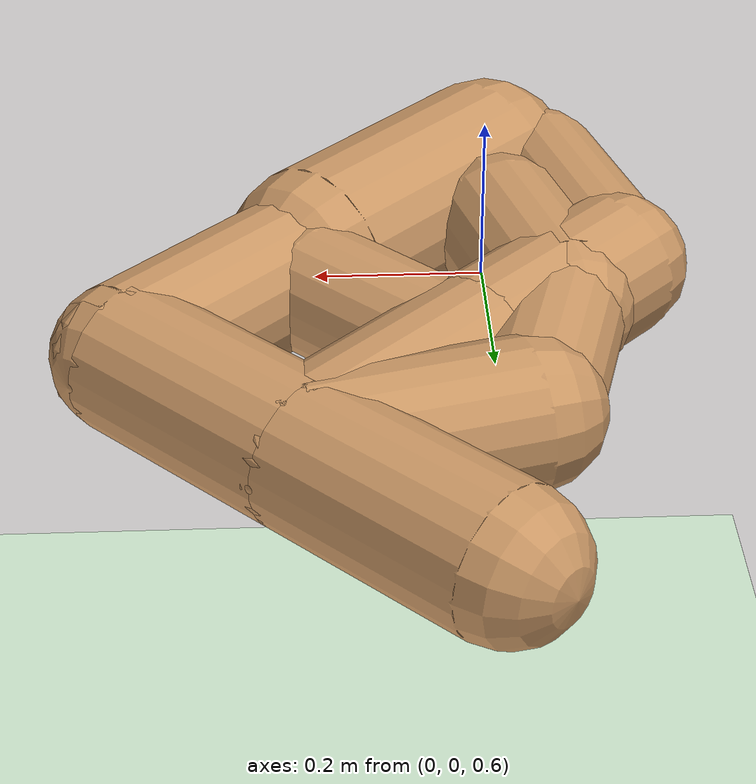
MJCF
<!--similar to Walker2D env-->
<mujoco model="walker">
  <compiler angle="degree" coordinate="local" inertiafromgeom="true"/>
  <option integrator="RK4" timestep="0.01"/>
  <custom>
    <numeric data="0.0 0.0 0.55 1.0 0.0 0.0 0.0 0.0 1.0 0.0 -1.0 0.0 -1.0 0.0 1.0" name="init_qpos"/>
  </custom>
  <default>
    <joint armature="0.01" damping=".1" limited="true"/>
    <geom conaffinity="0" condim="3" contype="1" density="1000" friction=".7 .1 .1" rgba="0.8 0.6 .4 1"/>
  </default>
  <asset>
    <texture builtin="gradient" height="100" rgb1="1 1 1" rgb2="0 0 0" type="skybox" width="100"/>
    <texture builtin="flat" height="1278" mark="cross" markrgb="1 1 1" name="texgeom" random="0.01" rgb1="0.8 0.6 0.4" rgb2="0.8 0.6 0.4" type="cube" width="127"/>
    <texture builtin="checker" height="100" name="texplane" rgb1="0 0 0" rgb2="0.8 0.8 0.8" type="2d" width="100"/>
    <material name="MatPlane" reflectance="0.5" shininess="1" specular="1" texrepeat="60 60" texture="texplane"/>
    <material name="geom" texture="texgeom" texuniform="true"/>
  </asset>
  <worldbody>
    <light cutoff="100" diffuse="1 1 1" dir="-0 0 -1.3" directional="true" exponent="1" pos="0 0 1.3" specular=".1 .1 .1"/>
    <geom conaffinity="1" condim="3" material="MatPlane" name="floor" pos="0 0 0" rgba="0.8 0.9 0.8 1" size="40 40 40" type="plane"/>
    <body name="0" pos="0 0 0.75">
      <camera name="track" mode="trackcom" pos="0 -3 0.3" xyaxes="1 0 0 0 0 1"/>
      <geom fromto="0 0 0 0.2 0.2 0" size="0.1" type="capsule"/>
      <joint armature="0" damping="0" limited="false" margin="0.01" name="0_joint" pos="0 0 0" type="free"/>
      <body name="1" pos="0.2 0.2 0">
        <geom fromto="0 0 0 0.2 0.2 0" size="0.08" type="capsule"/>
        <joint axis="0 1 0" name="1_joint" pos="0 0 0" limited="true" range="-100 100" type="hinge"/>
        <body name="11" pos="0.2 0.2 0">
          <geom fromto="0 0 0 -0.18 0.18 0" size="0.08" type="capsule"/>
          <joint axis="-0.707 -0.707 0" name="11_joint" pos="0 0 0" limited="true" range="-100 100" type="hinge"/>
          <body name="111" pos="-0.18 0.18 0">
            <geom fromto="0 0 0 -0.221296 -0.059296 0" size="0.08" type="capsule"/>
            <joint axis="-0.707 0.707 0" name="111_joint" pos="0 0 0" limited="true" range="-100 100" type="hinge"/>
            <body name="1111" pos="-0.221296 -0.059296 0">
              <geom fromto="0 0 0 -0.053367 -0.199167 0" size="0.07200000000000001" type="capsule"/>
              <joint axis="-0.707 0.707 0" name="1111_joint" pos="0 0 0" limited="true" range="-100 100" type="hinge"/>
              <body name="11111" pos="-0.053367 -0.199167 0">
                <geom fromto="0 0 0 0.04803 -0.17925 0" size="0.08" type="capsule"/>
                <joint axis="-0.707 -0.707 0" name="11111_joint" pos="0 0 0" limited="true" range="-100 100" type="hinge"/>
              </body>
            </body>
          </body>
          <body name="211" pos="-0.18 0.18 0">
            <geom fromto="0 0 0 -0.18 -0.18 0" size="0.08" type="capsule"/>
            <joint axis="-0.707 0.707 0" name="211_joint" pos="0 0 0" limited="true" range="-100 100" type="hinge"/>
            <body name="1211" pos="-0.18 -0.18 0">
              <geom fromto="0 0 0 -0.162 -0.162 0" size="0.08" type="capsule"/>
              <joint axis="-0.707 0.707 0" name="1211_joint" pos="0 0 0" limited="true" range="-100 100" type="hinge"/>
              <body name="11211" pos="-0.162 -0.162 0">
                <geom fromto="0 0 0 0.059296 -0.221296 0" size="0.07200000000000001" type="capsule"/>
                <joint axis="-0.707 -0.707 0" name="11211_joint" pos="0 0 0" limited="true" range="-100 100" type="hinge"/>
              </body>
            </body>
          </body>
          <body name="311" pos="-0.18 0.18 0">
            <geom fromto="0 0 0 -0.162 -0.162 0" size="0.07200000000000001" type="capsule"/>
            <joint axis="-0.707 0.707 0" name="311_joint" pos="0 0 0" limited="true" range="-100 100" type="hinge"/>
            <body name="1311" pos="-0.162 -0.162 0">
              <geom fromto="0 0 0 0.1458 -0.1458 0" size="0.07200000000000001" type="capsule"/>
              <joint axis="-0.707 -0.707 0" name="1311_joint" pos="0 0 0" limited="true" range="-100 100" type="hinge"/>
            </body>
          </body>
          <body name="411" pos="-0.18 0.18 0">
            <geom fromto="0 0 0 -0.18 0.18 0" size="0.08" type="capsule"/>
            <joint axis="-0.707 -0.707 0" name="411_joint" pos="0 0 0" limited="true" range="-100 100" type="hinge"/>
          </body>
        </body>
      </body>
    </body>
  </worldbody>
  <actuator>
    <motor ctrllimited="true" ctrlrange="-1.0 1.0" joint="1_joint" gear="150" name="1_joint"/>
    <motor ctrllimited="true" ctrlrange="-1.0 1.0" joint="11_joint" gear="150" name="11_joint"/>
    <motor ctrllimited="true" ctrlrange="-1.0 1.0" joint="111_joint" gear="150" name="111_joint"/>
    <motor ctrllimited="true" ctrlrange="-1.0 1.0" joint="211_joint" gear="150" name="211_joint"/>
    <motor ctrllimited="true" ctrlrange="-1.0 1.0" joint="311_joint" gear="150" name="311_joint"/>
    <motor ctrllimited="true" ctrlrange="-1.0 1.0" joint="411_joint" gear="150" name="411_joint"/>
    <motor ctrllimited="true" ctrlrange="-1.0 1.0" joint="1111_joint" gear="150" name="1111_joint"/>
    <motor ctrllimited="true" ctrlrange="-1.0 1.0" joint="1211_joint" gear="150" name="1211_joint"/>
    <motor ctrllimited="true" ctrlrange="-1.0 1.0" joint="1311_joint" gear="150" name="1311_joint"/>
    <motor ctrllimited="true" ctrlrange="-1.0 1.0" joint="11111_joint" gear="150" name="11111_joint"/>
    <motor ctrllimited="true" ctrlrange="-1.0 1.0" joint="11211_joint" gear="150" name="11211_joint"/>
  </actuator>
</mujoco>
